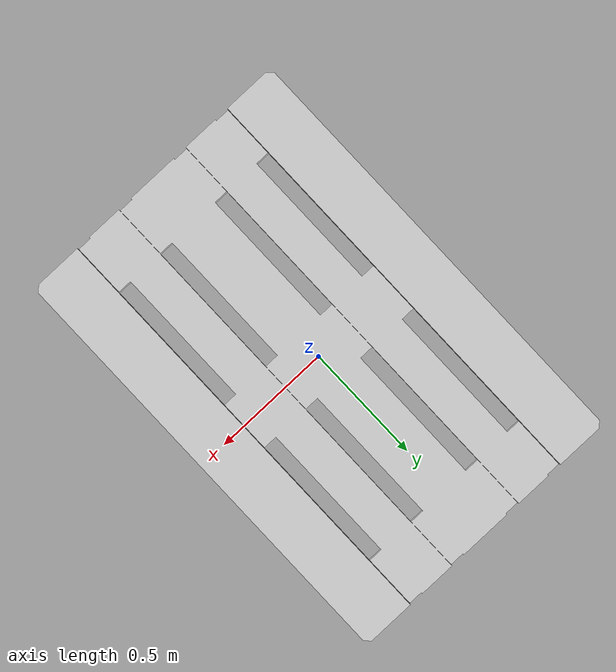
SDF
<?xml version="1.0" ?>
<sdf version="1.5">
  <model name="euro_pallet">
    <pose>0 0 0.2 0 0 0</pose>
      <static>true</static>
      <link name="euro_pallet">
        <inertial>
          <mass>20.0</mass>
          <inertia>
            <ixx>2.43</ixx>
            <ixy>0</ixy>
            <ixz>0</ixz>
            <iyy>1.10</iyy>
            <iyz>0</iyz>
            <izz>3.47</izz>
          </inertia>
        </inertial>
        <collision name="collision">
          <geometry>
            <mesh>
              <uri>meshes/pallet.dae</uri>
              <scale>0.15 0.15 0.15</scale>
            </mesh>
          </geometry>
        </collision>
        <visual name="visual">
          <geometry>
            <mesh>
              <uri>meshes/pallet.dae</uri>
              <scale>0.15 0.15 0.15</scale>
            </mesh>
          </geometry>
        </visual>
      </link>
    </model>
</sdf>
